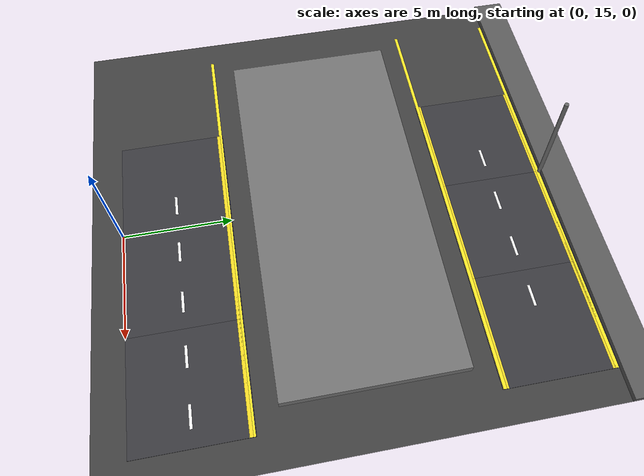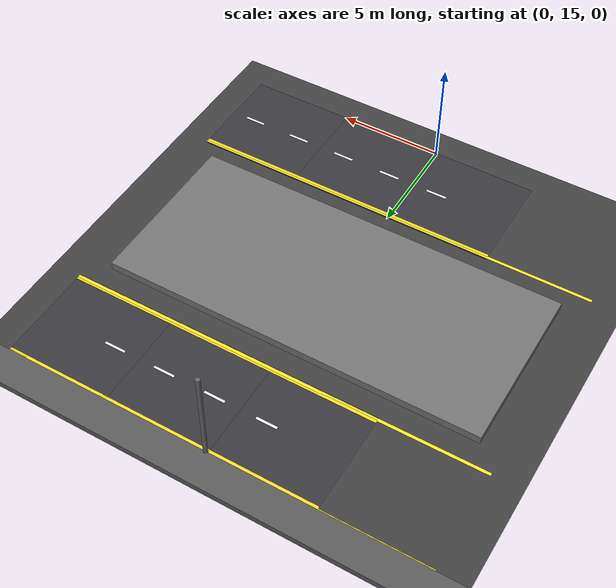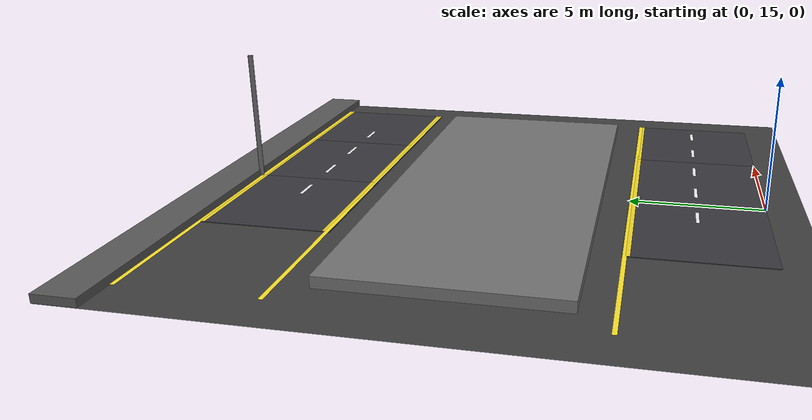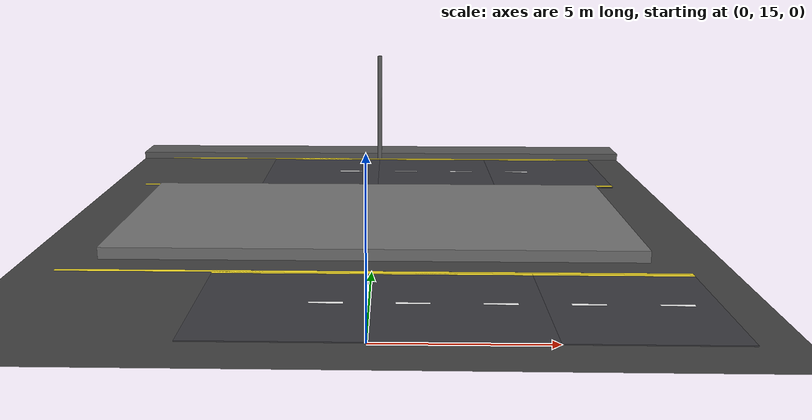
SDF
<sdf version="1.7">
 <world name="compact_city">
  <model name="ground_plane">
   <static>1</static>
   <pose>0 0 0.01 0 -0 0</pose>
   <link name="link">
    <collision name="collision">
     <geometry><plane><normal>0 0 1</normal><size>200 200</size></plane></geometry>
    </collision>
    <visual name="visual">
     <geometry><plane><normal>0 0 1</normal><size>200 200</size></plane></geometry>
     <material>
      <ambient>0.2 0.2 0.2 1</ambient>
      <diffuse>0.25 0.25 0.25 1</diffuse>
      <specular>0.1 0.1 0.1 1</specular>
     </material>
    </visual>
   </link>
  </model>
  <model name="road_tile_6">
   <static>1</static>
   <pose>-2.5 32.5 0.015 0 -0 0</pose>
   <link name="link">
    <collision name="collision"><geometry><box><size>5 5 0.03</size></box></geometry></collision>
    <visual name="visual">
     <geometry><box><size>5 5 0.03</size></box></geometry>
     <material>
      <ambient>0.18 0.18 0.2 1</ambient>
      <diffuse>0.22 0.22 0.24 1</diffuse>
      <specular>0.1 0.1 0.1 1</specular>
     </material>
    </visual>
   </link>
  </model>
  <model name="road_tile_7">
   <static>1</static>
   <pose>2.5 32.5 0.015 0 -0 0</pose>
   <link name="link">
    <collision name="collision"><geometry><box><size>5 5 0.03</size></box></geometry></collision>
    <visual name="visual">
     <geometry><box><size>5 5 0.03</size></box></geometry>
     <material>
      <ambient>0.18 0.18 0.2 1</ambient>
      <diffuse>0.22 0.22 0.24 1</diffuse>
      <specular>0.1 0.1 0.1 1</specular>
     </material>
    </visual>
   </link>
  </model>
  <model name="road_tile_8">
   <static>1</static>
   <pose>7.5 32.5 0.015 0 -0 0</pose>
   <link name="link">
    <collision name="collision"><geometry><box><size>5 5 0.03</size></box></geometry></collision>
    <visual name="visual">
     <geometry><box><size>5 5 0.03</size></box></geometry>
     <material>
      <ambient>0.18 0.18 0.2 1</ambient>
      <diffuse>0.22 0.22 0.24 1</diffuse>
      <specular>0.1 0.1 0.1 1</specular>
     </material>
    </visual>
   </link>
  </model>
  <model name="road_tile_26">
   <static>1</static>
   <pose>-2.5 17.5 0.015 0 -0 0</pose>
   <link name="link">
    <collision name="collision"><geometry><box><size>5 5 0.03</size></box></geometry></collision>
    <visual name="visual">
     <geometry><box><size>5 5 0.03</size></box></geometry>
     <material>
      <ambient>0.18 0.18 0.2 1</ambient>
      <diffuse>0.22 0.22 0.24 1</diffuse>
      <specular>0.1 0.1 0.1 1</specular>
     </material>
    </visual>
   </link>
  </model>
  <model name="road_tile_27">
   <static>1</static>
   <pose>2.5 17.5 0.015 0 -0 0</pose>
   <link name="link">
    <collision name="collision"><geometry><box><size>5 5 0.03</size></box></geometry></collision>
    <visual name="visual">
     <geometry><box><size>5 5 0.03</size></box></geometry>
     <material>
      <ambient>0.18 0.18 0.2 1</ambient>
      <diffuse>0.22 0.22 0.24 1</diffuse>
      <specular>0.1 0.1 0.1 1</specular>
     </material>
    </visual>
   </link>
  </model>
  <model name="road_tile_28">
   <static>1</static>
   <pose>7.5 17.5 0.015 0 -0 0</pose>
   <link name="link">
    <collision name="collision"><geometry><box><size>5 5 0.03</size></box></geometry></collision>
    <visual name="visual">
     <geometry><box><size>5 5 0.03</size></box></geometry>
     <material>
      <ambient>0.18 0.18 0.2 1</ambient>
      <diffuse>0.22 0.22 0.24 1</diffuse>
      <specular>0.1 0.1 0.1 1</specular>
     </material>
    </visual>
   </link>
  </model>
  <model name="sidewalk_north">
   <static>1</static>
   <pose>0 36 0.15 0 -0 0</pose>
   <link name="link">
    <collision name="collision"><geometry><box><size>64 2 0.3</size></box></geometry></collision>
    <visual name="visual">
     <geometry><box><size>64 2 0.3</size></box></geometry>
     <material>
      <ambient>0.3 0.3 0.3 1</ambient>
      <diffuse>0.35 0.35 0.35 1</diffuse>
      <specular>0.1 0.1 0.1 1</specular>
     </material>
    </visual>
   </link>
  </model>
  <model name="sidewalk_area_top_center">
   <static>1</static>
   <pose>0 25 0.2 0 -0 0</pose>
   <link name="link">
    <collision name="collision"><geometry><box><size>18 8 0.4</size></box></geometry></collision>
    <visual name="visual">
     <geometry><box><size>18 8 0.4</size></box></geometry>
     <material>
      <ambient>0.4 0.4 0.4 1</ambient>
      <diffuse>0.45 0.45 0.45 1</diffuse>
      <specular>0.2 0.2 0.2 1</specular>
     </material>
    </visual>
   </link>
  </model>
  <model name="el_192">
   <static>1</static>
   <pose>-2.5 19.8 0.038 0 -0 0</pose>
   <link name="link">
    <visual name="v">
     <geometry><box><size>5 0.15 0.002</size></box></geometry>
     <material><ambient>0.9 0.8 0.1 1</ambient><diffuse>0.95 0.85 0.15 1</diffuse></material>
    </visual>
   </link>
  </model>
  <model name="el_193">
   <static>1</static>
   <pose>-2.5 30.2 0.038 0 -0 0</pose>
   <link name="link">
    <visual name="v">
     <geometry><box><size>5 0.15 0.002</size></box></geometry>
     <material><ambient>0.9 0.8 0.1 1</ambient><diffuse>0.95 0.85 0.15 1</diffuse></material>
    </visual>
   </link>
  </model>
  <model name="el_194">
   <static>1</static>
   <pose>-2.5 34.8 0.038 0 -0 0</pose>
   <link name="link">
    <visual name="v">
     <geometry><box><size>5 0.15 0.002</size></box></geometry>
     <material><ambient>0.9 0.8 0.1 1</ambient><diffuse>0.95 0.85 0.15 1</diffuse></material>
    </visual>
   </link>
  </model>
  <model name="el_202">
   <static>1</static>
   <pose>2.5 19.8 0.038 0 -0 0</pose>
   <link name="link">
    <visual name="v">
     <geometry><box><size>5 0.15 0.002</size></box></geometry>
     <material><ambient>0.9 0.8 0.1 1</ambient><diffuse>0.95 0.85 0.15 1</diffuse></material>
    </visual>
   </link>
  </model>
  <model name="el_203">
   <static>1</static>
   <pose>2.5 30.2 0.038 0 -0 0</pose>
   <link name="link">
    <visual name="v">
     <geometry><box><size>5 0.15 0.002</size></box></geometry>
     <material><ambient>0.9 0.8 0.1 1</ambient><diffuse>0.95 0.85 0.15 1</diffuse></material>
    </visual>
   </link>
  </model>
  <model name="el_204">
   <static>1</static>
   <pose>2.5 34.8 0.038 0 -0 0</pose>
   <link name="link">
    <visual name="v">
     <geometry><box><size>5 0.15 0.002</size></box></geometry>
     <material><ambient>0.9 0.8 0.1 1</ambient><diffuse>0.95 0.85 0.15 1</diffuse></material>
    </visual>
   </link>
  </model>
  <model name="el_210">
   <static>1</static>
   <pose>7.5 19.8 0.038 0 -0 0</pose>
   <link name="link">
    <visual name="v">
     <geometry><box><size>5 0.15 0.002</size></box></geometry>
     <material><ambient>0.9 0.8 0.1 1</ambient><diffuse>0.95 0.85 0.15 1</diffuse></material>
    </visual>
   </link>
  </model>
  <model name="el_211">
   <static>1</static>
   <pose>7.5 30.2 0.038 0 -0 0</pose>
   <link name="link">
    <visual name="v">
     <geometry><box><size>5 0.15 0.002</size></box></geometry>
     <material><ambient>0.9 0.8 0.1 1</ambient><diffuse>0.95 0.85 0.15 1</diffuse></material>
    </visual>
   </link>
  </model>
  <model name="el_212">
   <static>1</static>
   <pose>7.5 34.8 0.038 0 -0 0</pose>
   <link name="link">
    <visual name="v">
     <geometry><box><size>5 0.15 0.002</size></box></geometry>
     <material><ambient>0.9 0.8 0.1 1</ambient><diffuse>0.95 0.85 0.15 1</diffuse></material>
    </visual>
   </link>
  </model>
  <model name="ld_76">
   <static>1</static>
   <pose>-1.2500 32.5000 0.038 0 0 0</pose>
   <link name="link">
    <visual name="v">
     <geometry><box><size>1 0.12 0.002</size></box></geometry>
     <material><ambient>1 1 1 1</ambient><diffuse>0.95 0.95 0.95 1</diffuse></material>
    </visual>
   </link>
  </model>
  <model name="ld_77">
   <static>1</static>
   <pose>1.2500 32.5000 0.038 0 0 0</pose>
   <link name="link">
    <visual name="v">
     <geometry><box><size>1 0.12 0.002</size></box></geometry>
     <material><ambient>1 1 1 1</ambient><diffuse>0.95 0.95 0.95 1</diffuse></material>
    </visual>
   </link>
  </model>
  <model name="ld_78">
   <static>1</static>
   <pose>3.7500 32.5000 0.038 0 0 0</pose>
   <link name="link">
    <visual name="v">
     <geometry><box><size>1 0.12 0.002</size></box></geometry>
     <material><ambient>1 1 1 1</ambient><diffuse>0.95 0.95 0.95 1</diffuse></material>
    </visual>
   </link>
  </model>
  <model name="ld_79">
   <static>1</static>
   <pose>6.2500 32.5000 0.038 0 0 0</pose>
   <link name="link">
    <visual name="v">
     <geometry><box><size>1 0.12 0.002</size></box></geometry>
     <material><ambient>1 1 1 1</ambient><diffuse>0.95 0.95 0.95 1</diffuse></material>
    </visual>
   </link>
  </model>
  <model name="ld_92">
   <static>1</static>
   <pose>-1.2500 17.5000 0.038 0 0 0</pose>
   <link name="link">
    <visual name="v">
     <geometry><box><size>1 0.12 0.002</size></box></geometry>
     <material><ambient>1 1 1 1</ambient><diffuse>0.95 0.95 0.95 1</diffuse></material>
    </visual>
   </link>
  </model>
  <model name="ld_93">
   <static>1</static>
   <pose>1.2500 17.5000 0.038 0 0 0</pose>
   <link name="link">
    <visual name="v">
     <geometry><box><size>1 0.12 0.002</size></box></geometry>
     <material><ambient>1 1 1 1</ambient><diffuse>0.95 0.95 0.95 1</diffuse></material>
    </visual>
   </link>
  </model>
  <model name="ld_94">
   <static>1</static>
   <pose>3.7500 17.5000 0.038 0 0 0</pose>
   <link name="link">
    <visual name="v">
     <geometry><box><size>1 0.12 0.002</size></box></geometry>
     <material><ambient>1 1 1 1</ambient><diffuse>0.95 0.95 0.95 1</diffuse></material>
    </visual>
   </link>
  </model>
  <model name="ld_95">
   <static>1</static>
   <pose>6.2500 17.5000 0.038 0 0 0</pose>
   <link name="link">
    <visual name="v">
     <geometry><box><size>1 0.12 0.002</size></box></geometry>
     <material><ambient>1 1 1 1</ambient><diffuse>0.95 0.95 0.95 1</diffuse></material>
    </visual>
   </link>
  </model>
  <model name="ld_96">
   <static>1</static>
   <pose>8.7500 17.5000 0.038 0 0 0</pose>
   <link name="link">
    <visual name="v">
     <geometry><box><size>1 0.12 0.002</size></box></geometry>
     <material><ambient>1 1 1 1</ambient><diffuse>0.95 0.95 0.95 1</diffuse></material>
    </visual>
   </link>
  </model>
  <model name="pole_3">
   <static>1</static>
   <pose>0 35 2.5 0 -0 0</pose>
   <link name="link">
    <collision name="collision">
     <geometry><cylinder><radius>0.1</radius><length>5</length></cylinder></geometry>
    </collision>
    <visual name="visual">
     <geometry><cylinder><radius>0.1</radius><length>5</length></cylinder></geometry>
     <material><ambient>0.3 0.3 0.3 1</ambient><diffuse>0.4 0.4 0.4 1</diffuse></material>
    </visual>
   </link>
  </model>
  <model name="edge_h_3">
   <static>1</static>
   <pose>0 30.1 0.038 0 -0 0</pose>
   <link name="link">
    <visual name="visual">
     <geometry><box><size>20 0.15 0.002</size></box></geometry>
     <material><ambient>0.95 0.85 0.1 1</ambient><diffuse>1 0.9 0.15 1</diffuse></material>
    </visual>
   </link>
  </model>
  <model name="edge_h_4">
   <static>1</static>
   <pose>0 34.9 0.038 0 -0 0</pose>
   <link name="link">
    <visual name="visual">
     <geometry><box><size>20 0.15 0.002</size></box></geometry>
     <material><ambient>0.95 0.85 0.1 1</ambient><diffuse>1 0.9 0.15 1</diffuse></material>
    </visual>
   </link>
  </model>
  <model name="edge_h_10">
   <static>1</static>
   <pose>0 19.9 0.038 0 -0 0</pose>
   <link name="link">
    <visual name="visual">
     <geometry><box><size>20 0.15 0.002</size></box></geometry>
     <material><ambient>0.95 0.85 0.1 1</ambient><diffuse>1 0.9 0.15 1</diffuse></material>
    </visual>
   </link>
  </model>
 </world>
</sdf>
